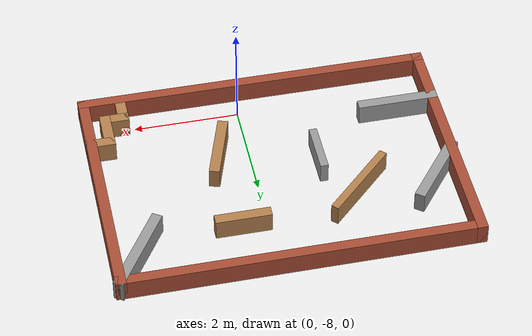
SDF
<?xml version='1.0'?>
<sdf version='1.7'>
  <model name='tie23_3'>
    <pose>-0.391184 -4.295 0 0 -0 0</pose>
    <link name='Wall_0'>
      <collision name='Wall_0_Collision'>
        <geometry>
          <box>
            <size>6.8 0.2 0.4</size>
          </box>
        </geometry>
        <pose>0 0 0.2 0 -0 0</pose>
      </collision>
      <visual name='Wall_0_Visual'>
        <pose>0 0 0.2 0 -0 0</pose>
        <geometry>
          <box>
            <size>6.8 0.2 0.4</size>
          </box>
        </geometry>
        <material>
          <script>
            <uri>file://media/materials/scripts/gazebo.material</uri>
            <name>Gazebo/Bricks</name>
          </script>
          <ambient>1 1 1 1</ambient>
        </material>
        <meta>
          <layer>0</layer>
        </meta>
      </visual>
      <pose>0.001184 0.405 0 0 -0 0</pose>
    </link>
    <link name='Wall_1'>
      <collision name='Wall_1_Collision'>
        <geometry>
          <box>
            <size>4.8 0.2 0.4</size>
          </box>
        </geometry>
        <pose>0 0 0.2 0 -0 0</pose>
      </collision>
      <visual name='Wall_1_Visual'>
        <pose>0 0 0.2 0 -0 0</pose>
        <geometry>
          <box>
            <size>4.8 0.2 0.4</size>
          </box>
        </geometry>
        <material>
          <script>
            <uri>file://media/materials/scripts/gazebo.material</uri>
            <name>Gazebo/Bricks</name>
          </script>
          <ambient>1 1 1 1</ambient>
        </material>
        <meta>
          <layer>0</layer>
        </meta>
      </visual>
      <pose>3.30118 -1.895 0 0 -0 -1.5708</pose>
    </link>
    <link name='Wall_13'>
      <collision name='Wall_13_Collision'>
        <geometry>
          <box>
            <size>1.59014 0.2 0.4</size>
          </box>
        </geometry>
        <pose>0 0 0.2 0 -0 0</pose>
      </collision>
      <visual name='Wall_13_Visual'>
        <pose>0 0 0.2 0 -0 0</pose>
        <geometry>
          <box>
            <size>1.59014 0.2 0.4</size>
          </box>
        </geometry>
        <material>
          <script>
            <uri>file://media/materials/scripts/gazebo.material</uri>
            <name>Gazebo/Grey</name>
          </script>
          <ambient>1 1 1 1</ambient>
        </material>
        <meta>
          <layer>0</layer>
        </meta>
      </visual>
      <pose>-2.87382 -1.145 0 0 -0 -2.22869</pose>
    </link>
    <link name='Wall_2'>
      <collision name='Wall_2_Collision'>
        <geometry>
          <box>
            <size>6.8 0.2 0.4</size>
          </box>
        </geometry>
        <pose>0 0 0.2 0 -0 0</pose>
      </collision>
      <visual name='Wall_2_Visual'>
        <pose>0 0 0.2 0 -0 0</pose>
        <geometry>
          <box>
            <size>6.8 0.2 0.4</size>
          </box>
        </geometry>
        <material>
          <script>
            <uri>file://media/materials/scripts/gazebo.material</uri>
            <name>Gazebo/Bricks</name>
          </script>
          <ambient>1 1 1 1</ambient>
        </material>
        <meta>
          <layer>0</layer>
        </meta>
      </visual>
      <pose>0.001184 -4.195 0 0 -0 3.14159</pose>
    </link>
    <link name='Wall_23'>
      <collision name='Wall_23_Collision'>
        <geometry>
          <box>
            <size>1.70564 0.15 0.4</size>
          </box>
        </geometry>
        <pose>0 0 0.2 0 -0 0</pose>
      </collision>
      <visual name='Wall_23_Visual'>
        <pose>0 0 0.2 0 -0 0</pose>
        <geometry>
          <box>
            <size>1.70564 0.15 0.4</size>
          </box>
        </geometry>
        <material>
          <script>
            <uri>file://media/materials/scripts/gazebo.material</uri>
            <name>Gazebo/Wood</name>
          </script>
          <ambient>1 1 1 1</ambient>
        </material>
        <meta>
          <layer>0</layer>
        </meta>
      </visual>
      <pose>-1.39882 -1.145 0 0 -0 0.785398</pose>
    </link>
    <link name='Wall_25'>
      <collision name='Wall_25_Collision'>
        <geometry>
          <box>
            <size>1 0.15 0.4</size>
          </box>
        </geometry>
        <pose>0 0 0.2 0 -0 0</pose>
      </collision>
      <visual name='Wall_25_Visual'>
        <pose>0 0 0.2 0 -0 0</pose>
        <geometry>
          <box>
            <size>1 0.15 0.4</size>
          </box>
        </geometry>
        <material>
          <script>
            <uri>file://media/materials/scripts/gazebo.material</uri>
            <name>Gazebo/Grey</name>
          </script>
          <ambient>1 1 1 1</ambient>
        </material>
        <meta>
          <layer>0</layer>
        </meta>
      </visual>
      <pose>-0.848816 -2.12 0 0 -0 -1.5708</pose>
    </link>
    <link name='Wall_28'>
      <collision name='Wall_28_Collision'>
        <geometry>
          <box>
            <size>1.55 0.2 0.4</size>
          </box>
        </geometry>
        <pose>0 0 0.2 0 -0 0</pose>
      </collision>
      <visual name='Wall_28_Visual'>
        <pose>0 0 0.2 0 -0 0</pose>
        <geometry>
          <box>
            <size>1.55 0.2 0.4</size>
          </box>
        </geometry>
        <material>
          <script>
            <uri>file://media/materials/scripts/gazebo.material</uri>
            <name>Gazebo/Grey</name>
          </script>
          <ambient>1 1 1 1</ambient>
        </material>
        <meta>
          <layer>0</layer>
        </meta>
      </visual>
      <pose>-2.62382 -3.095 0 0 -0 0</pose>
    </link>
    <link name='Wall_3'>
      <collision name='Wall_3_Collision'>
        <geometry>
          <box>
            <size>4.8 0.2 0.4</size>
          </box>
        </geometry>
        <pose>0 0 0.2 0 -0 0</pose>
      </collision>
      <visual name='Wall_3_Visual'>
        <pose>0 0 0.2 0 -0 0</pose>
        <geometry>
          <box>
            <size>4.8 0.2 0.4</size>
          </box>
        </geometry>
        <material>
          <script>
            <uri>file://media/materials/scripts/gazebo.material</uri>
            <name>Gazebo/Bricks</name>
          </script>
          <ambient>1 1 1 1</ambient>
        </material>
        <meta>
          <layer>0</layer>
        </meta>
      </visual>
      <pose>-3.29882 -1.895 0 0 -0 1.5708</pose>
    </link>
    <link name='Wall_32'>
      <collision name='Wall_32_Collision'>
        <geometry>
          <box>
            <size>1.05 0.2 0.4</size>
          </box>
        </geometry>
        <pose>0 0 0.2 0 -0 0</pose>
      </collision>
      <visual name='Wall_32_Visual'>
        <pose>0 0 0.2 0 -0 0</pose>
        <geometry>
          <box>
            <size>1.05 0.2 0.4</size>
          </box>
        </geometry>
        <material>
          <script>
            <uri>file://media/materials/scripts/gazebo.material</uri>
            <name>Gazebo/Wood</name>
          </script>
          <ambient>1 1 1 1</ambient>
        </material>
        <meta>
          <layer>0</layer>
        </meta>
      </visual>
      <pose>0.876184 -0.695 0 0 -0 3.14159</pose>
    </link>
    <link name='Wall_36'>
      <collision name='Wall_36_Collision'>
        <geometry>
          <box>
            <size>1.79531 0.2 0.4</size>
          </box>
        </geometry>
        <pose>0 0 0.2 0 -0 0</pose>
      </collision>
      <visual name='Wall_36_Visual'>
        <pose>0 0 0.2 0 -0 0</pose>
        <geometry>
          <box>
            <size>1.79531 0.2 0.4</size>
          </box>
        </geometry>
        <material>
          <script>
            <uri>file://media/materials/scripts/gazebo.material</uri>
            <name>Gazebo/Grey</name>
          </script>
          <ambient>1 1 1 1</ambient>
        </material>
        <meta>
          <layer>0</layer>
        </meta>
      </visual>
      <pose>2.87618 -0.27 0 0 -0 1.00887</pose>
    </link>
    <link name='Wall_39'>
      <collision name='Wall_39_Collision'>
        <geometry>
          <box>
            <size>0.55 0.2 0.4</size>
          </box>
        </geometry>
        <pose>0 0 0.2 0 -0 0</pose>
      </collision>
      <visual name='Wall_39_Visual'>
        <pose>0 0 0.2 0 -0 0</pose>
        <geometry>
          <box>
            <size>0.55 0.2 0.4</size>
          </box>
        </geometry>
        <material>
          <script>
            <uri>file://media/materials/scripts/gazebo.material</uri>
            <name>Gazebo/Wood</name>
          </script>
          <ambient>1 1 1 1</ambient>
        </material>
        <meta>
          <layer>0</layer>
        </meta>
      </visual>
      <pose>3.12618 -3.095 0 0 -0 3.14159</pose>
    </link>
    <link name='Wall_40'>
      <collision name='Wall_40_Collision'>
        <geometry>
          <box>
            <size>0.8 0.2 0.4</size>
          </box>
        </geometry>
        <pose>0 0 0.2 0 -0 0</pose>
      </collision>
      <visual name='Wall_40_Visual'>
        <pose>0 0 0.2 0 -0 0</pose>
        <geometry>
          <box>
            <size>0.8 0.2 0.4</size>
          </box>
        </geometry>
        <material>
          <script>
            <uri>file://media/materials/scripts/gazebo.material</uri>
            <name>Gazebo/Wood</name>
          </script>
          <ambient>1 1 1 1</ambient>
        </material>
        <meta>
          <layer>0</layer>
        </meta>
      </visual>
      <pose>2.95118 -3.395 0 0 -0 -1.5708</pose>
    </link>
    <link name='Wall_41'>
      <collision name='Wall_41_Collision'>
        <geometry>
          <box>
            <size>0.55 0.2 0.4</size>
          </box>
        </geometry>
        <pose>0 0 0.2 0 -0 0</pose>
      </collision>
      <visual name='Wall_41_Visual'>
        <pose>0 0 0.2 0 -0 0</pose>
        <geometry>
          <box>
            <size>0.55 0.2 0.4</size>
          </box>
        </geometry>
        <material>
          <script>
            <uri>file://media/materials/scripts/gazebo.material</uri>
            <name>Gazebo/Wood</name>
          </script>
          <ambient>1 1 1 1</ambient>
        </material>
        <meta>
          <layer>0</layer>
        </meta>
      </visual>
      <pose>2.77618 -3.695 0 0 -0 3.14159</pose>
    </link>
    <link name='Wall_42'>
      <collision name='Wall_42_Collision'>
        <geometry>
          <box>
            <size>0.55 0.2 0.4</size>
          </box>
        </geometry>
        <pose>0 0 0.2 0 -0 0</pose>
      </collision>
      <visual name='Wall_42_Visual'>
        <pose>0 0 0.2 0 -0 0</pose>
        <geometry>
          <box>
            <size>0.55 0.2 0.4</size>
          </box>
        </geometry>
        <material>
          <script>
            <uri>file://media/materials/scripts/gazebo.material</uri>
            <name>Gazebo/Wood</name>
          </script>
          <ambient>1 1 1 1</ambient>
        </material>
        <meta>
          <layer>0</layer>
        </meta>
      </visual>
      <pose>2.60118 -3.87 0 0 -0 -1.5708</pose>
    </link>
    <link name='Wall_48'>
      <collision name='Wall_48_Collision'>
        <geometry>
          <box>
            <size>1.35434 0.2 0.4</size>
          </box>
        </geometry>
        <pose>0 0 0.2 0 -0 0</pose>
      </collision>
      <visual name='Wall_48_Visual'>
        <pose>0 0 0.2 0 -0 0</pose>
        <geometry>
          <box>
            <size>1.35434 0.2 0.4</size>
          </box>
        </geometry>
        <material>
          <script>
            <uri>file://media/materials/scripts/gazebo.material</uri>
            <name>Gazebo/Wood</name>
          </script>
          <ambient>1 1 1 1</ambient>
        </material>
        <meta>
          <layer>0</layer>
        </meta>
      </visual>
      <pose>0.976184 -2.545 0 0 -0 -1.87885</pose>
    </link>
    <static>1</static>
  </model>
</sdf>
